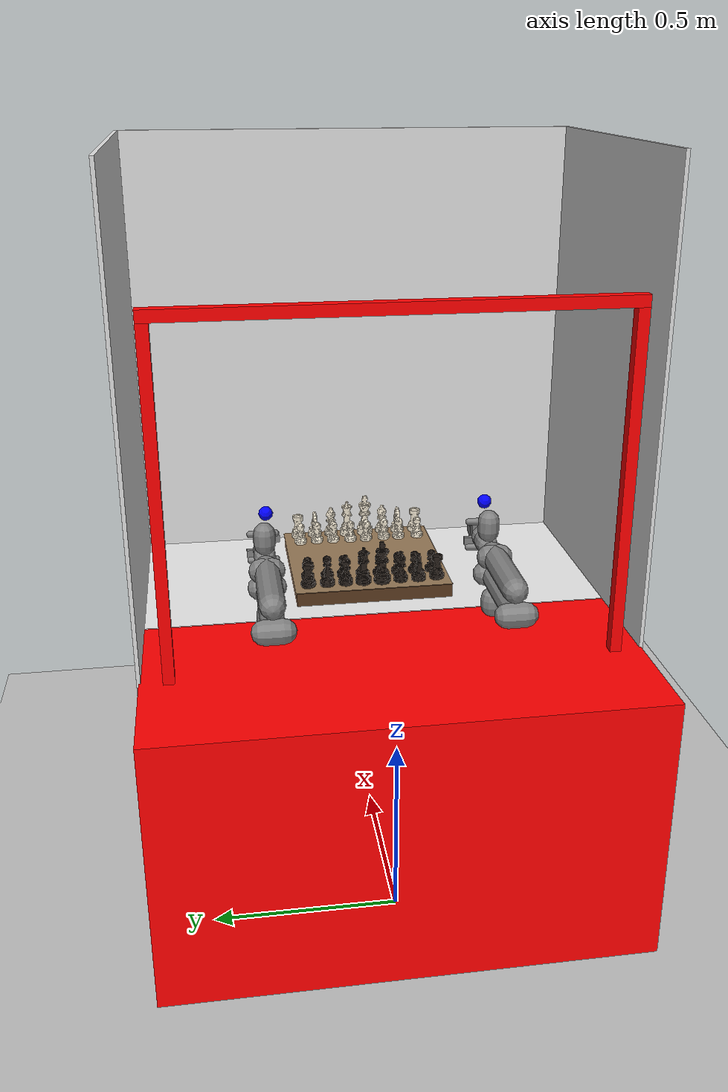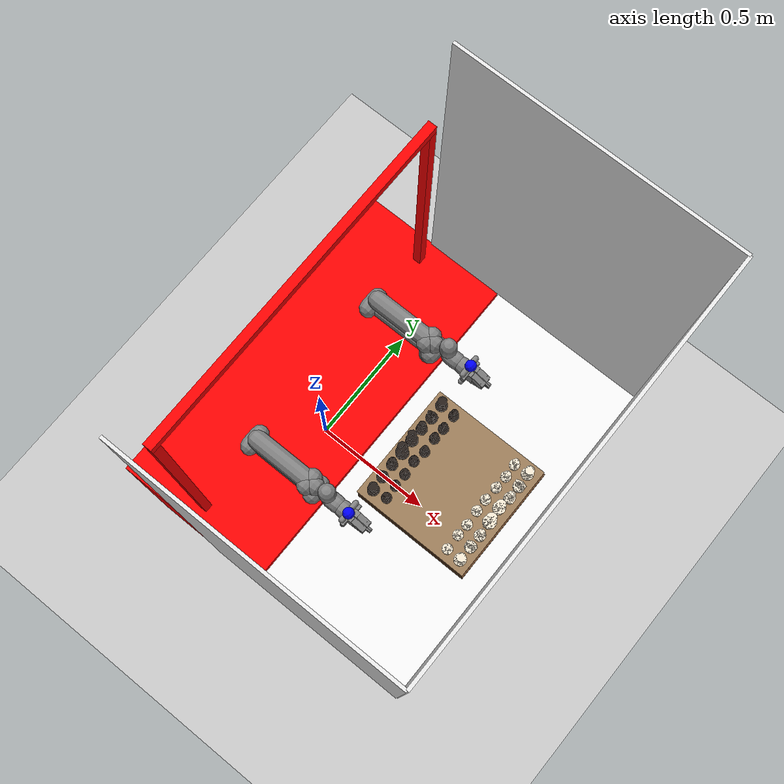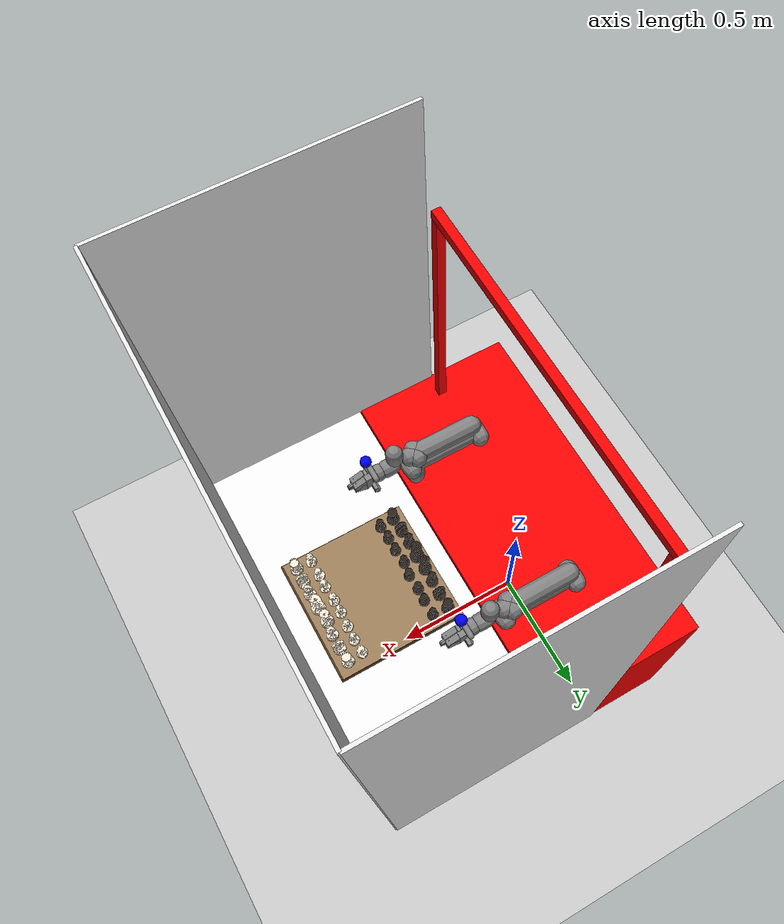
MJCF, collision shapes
<mujoco model="yam_chess">
  <compiler angle="radian" meshdir="assets" texturedir="assets"/>

  <option integrator="implicitfast"/>

  <visual>
    <global azimuth="120" elevation="-20" offwidth="1920" offheight="1080"/>
    <quality shadowsize="8192" offsamples="16"/>
    <headlight ambient="0.40 0.40 0.40" diffuse="0.0 0.0 0.0" specular="0 0 0"/>
    <rgba haze="1.0 1.0 1.0 1"/>
  </visual>

  <default>
    <default class="yam">
      <position inheritrange="1"/>
      <joint frictionloss="0.1" axis="0 0 1"/>
      <default class="dm4340">
        <joint armature="0.032"/>
        <position kp="40" kv="2.5" forcerange="-28 28"/>
      </default>
      <default class="dm4310">
        <joint armature="0.0018"/>
        <position kp="10" kv="1" forcerange="-10 10"/>
      </default>
      <default class="visual">
        <geom type="mesh" contype="0" conaffinity="0" density="0" group="2" material="black"/>
      </default>
      <default class="collision">
        <geom group="3" type="capsule" friction="2.0 0.1 0.01" condim="6"/>
        <default class="sphere_collision">
          <geom size="0.0006 0 0" type="sphere" rgba="1 0 0 1" friction="4.0 0.1 0.01" condim="6" solimp="0.998 0.998 0.001" solref="0.004 1" priority="2"/>
        </default>
      </default>
      <default class="finger">
        <joint type="slide" armature="0.1" frictionloss="0.1"/>
        <position ctrlrange="0.0 0.0495" kp="400" kv="14" inheritrange="0"/>
      </default>
    </default>
    <default class="chess_piece">
      <geom type="mesh" condim="6" friction="3.0 0.03 0.003" density="0" solref="0.004 1" solimp="0.998 0.998 0.001" priority="1"/>
    </default>
  </default>

  <asset>
    <material name="black" rgba="0.30 0.30 0.30 1"/>
    <material name="white" rgba="0.9 0.9 0.9 1"/>
    <material name="dark_piece" rgba="0.15 0.12 0.10 1" specular="0.6" shininess="0.8"/>
    <material name="light_piece" rgba="0.92 0.88 0.80 1" specular="0.6" shininess="0.8"/>
    <texture name="checker_board" type="2d" builtin="checker"
      rgb1="0.82 0.72 0.55" rgb2="0.35 0.22 0.12" width="512" height="512"/>
    <material name="board_mat" texture="checker_board" texrepeat="4 4" specular="0.3" shininess="0.5"/>
    <material name="board_side_mat" rgba="0.35 0.22 0.12 1" specular="0.3" shininess="0.5"/>

    <!-- Yam arm meshes -->
    <mesh file="i2rt_yam/assets/model2.stl"/>
    <mesh file="i2rt_yam/assets/model2__2.stl"/>
    <mesh file="i2rt_yam/assets/model2__3.stl"/>
    <mesh file="i2rt_yam/assets/model2__4.stl"/>
    <mesh file="i2rt_yam/assets/model2__5.stl"/>
    <mesh file="i2rt_yam/assets/model2__6.stl"/>
    <mesh file="i2rt_yam/assets/model2__7.stl"/>
    <mesh file="i2rt_yam/assets/model2__8.stl"/>
    <mesh file="i2rt_yam/assets/model2__9.stl"/>
    <mesh file="i2rt_yam/assets/model2__10.stl"/>
    <mesh file="i2rt_yam/assets/model2__11.stl"/>
    <mesh file="i2rt_yam/assets/model2__12.stl"/>
    <mesh file="i2rt_yam/assets/model2__13.stl"/>
    <mesh file="i2rt_yam/assets/model2__14.stl"/>
    <mesh file="i2rt_yam/assets/model2__15.stl"/>
    <mesh file="i2rt_yam/assets/model2__16.stl"/>
    <mesh file="i2rt_yam/assets/model2__17.stl"/>
    <mesh name="base_visual_gate" file="i2rt_yam/assets/base_visual_gate.stl"/>
    <mesh name="camera_d405" file="i2rt_yam/assets/d405.stl"/>

    <!-- Chess meshes -->
    <mesh name="black_bishop_1" file="chess/black_bishop_1.obj" scale="0.029 0.029 0.029"/>
    <mesh name="black_bishop_2" file="chess/black_bishop_2.obj" scale="0.029 0.029 0.029"/>
    <mesh name="black_king_1" file="chess/black_king_1.obj" scale="0.029 0.029 0.029"/>
    <mesh name="black_knight_1" file="chess/black_knight_1.obj" scale="0.029 0.029 0.029"/>
    <mesh name="black_knight_2" file="chess/black_knight_2.obj" scale="0.029 0.029 0.029"/>
    <mesh name="black_pawn_1" file="chess/black_pawn_1.obj" scale="0.029 0.029 0.029"/>
    <mesh name="black_pawn_2" file="chess/black_pawn_2.obj" scale="0.029 0.029 0.029"/>
    <mesh name="black_pawn_3" file="chess/black_pawn_3.obj" scale="0.029 0.029 0.029"/>
    <mesh name="black_pawn_4" file="chess/black_pawn_4.obj" scale="0.029 0.029 0.029"/>
    <mesh name="black_pawn_5" file="chess/black_pawn_5.obj" scale="0.029 0.029 0.029"/>
    <mesh name="black_pawn_6" file="chess/black_pawn_6.obj" scale="0.029 0.029 0.029"/>
    <mesh name="black_pawn_7" file="chess/black_pawn_7.obj" scale="0.029 0.029 0.029"/>
    <mesh name="black_pawn_8" file="chess/black_pawn_8.obj" scale="0.029 0.029 0.029"/>
    <mesh name="black_queen_1" file="chess/black_queen_1.obj" scale="0.029 0.029 0.029"/>
    <mesh name="black_rook_1" file="chess/black_rook_1.obj" scale="0.029 0.029 0.029"/>
    <mesh name="black_rook_2" file="chess/black_rook_2.obj" scale="0.029 0.029 0.029"/>
    <mesh name="board" file="chess/board.obj" scale="0.029 0.029 0.029"/>
    <mesh name="white_bishop_1" file="chess/white_bishop_1.obj" scale="0.029 0.029 0.029"/>
    <mesh name="white_bishop_2" file="chess/white_bishop_2.obj" scale="0.029 0.029 0.029"/>
    <mesh name="white_king_1" file="chess/white_king_1.obj" scale="0.029 0.029 0.029"/>
    <mesh name="white_knight_1" file="chess/white_knight_1.obj" scale="0.029 0.029 0.029"/>
    <mesh name="white_knight_2" file="chess/white_knight_2.obj" scale="0.029 0.029 0.029"/>
    <mesh name="white_pawn_1" file="chess/white_pawn_1.obj" scale="0.029 0.029 0.029"/>
    <mesh name="white_pawn_2" file="chess/white_pawn_2.obj" scale="0.029 0.029 0.029"/>
    <mesh name="white_pawn_3" file="chess/white_pawn_3.obj" scale="0.029 0.029 0.029"/>
    <mesh name="white_pawn_4" file="chess/white_pawn_4.obj" scale="0.029 0.029 0.029"/>
    <mesh name="white_pawn_5" file="chess/white_pawn_5.obj" scale="0.029 0.029 0.029"/>
    <mesh name="white_pawn_6" file="chess/white_pawn_6.obj" scale="0.029 0.029 0.029"/>
    <mesh name="white_pawn_7" file="chess/white_pawn_7.obj" scale="0.029 0.029 0.029"/>
    <mesh name="white_pawn_8" file="chess/white_pawn_8.obj" scale="0.029 0.029 0.029"/>
    <mesh name="white_queen_1" file="chess/white_queen_1.obj" scale="0.029 0.029 0.029"/>
    <mesh name="white_rook_1" file="chess/white_rook_1.obj" scale="0.029 0.029 0.029"/>
    <mesh name="white_rook_2" file="chess/white_rook_2.obj" scale="0.029 0.029 0.029"/>

    <!-- Environment -->
    <mesh name="flexible_base" file="flexible_gripper/base.stl"/>
    <mesh name="linear_module" file="flexible_gripper/linear_module.stl"/>
    <mesh name="soft_tips" file="flexible_gripper/soft_tips.stl"/>
    <texture type="skybox" builtin="gradient" rgb1="1.0 1.0 1.0" rgb2="0.98 0.98 0.98" width="512" height="3072"/>
    <texture type="2d" name="groundplane" builtin="checker" mark="edge"
      rgb1="0.55 0.55 0.55" rgb2="0.50 0.50 0.50" markrgb="0.6 0.6 0.6" width="300" height="300"/>
    <material name="groundplane" texture="groundplane" texuniform="true" texrepeat="5 5" reflectance="0.2"/>
  </asset>

  <worldbody>
    <!-- Lighting -->
    <light pos="0 0 1.5" dir="0 0 -1" directional="true"
      diffuse="0.30 0.30 0.30" specular="0.05 0.05 0.05"/>

    <!-- Floor -->
    <geom name="floor" size="0 0 0.05" type="plane" rgba="0.75 0.75 0.75 1"/>

    <!-- Gate/station structure (visual) -->
    <geom type="mesh" contype="0" conaffinity="0" group="2" density="0" rgba="0.60 0.62 0.68 1" mesh="base_visual_gate"/>
    <geom size="0.2975 0.65 0.375" pos="0 0 0.375" type="box" group="3" rgba="1 0 0 0.0"/>

    <!-- Gate collision bodies + top camera -->
    <body name="gate_collision" pos="0 0 0.75">
      <geom size="0.015 0.015 0.45" pos="0 0.575 0.45" type="box" group="3" rgba="1 0 0 0.0"/>
      <geom size="0.015 0.015 0.45" pos="0 -0.575 0.45" type="box" group="3" rgba="1 0 0 0.0"/>
      <geom size="0.015 0.015 0.59" pos="0 0 0.915" quat="0.707107 0.707107 0 0" type="box" group="3" rgba="1 0 0 0.0"/>
      <body name="top_bar_center" pos="0 0 0.915">
        <body name="top_camera_d405" pos="0.08600512 -0.009 0.03932053" quat="0.183012 0.683013 0.683013 0.183012">
          <geom type="mesh" contype="0" conaffinity="0" group="2" density="0.001" mass="0.001"
            rgba="0 0 0 0" mesh="camera_d405"/>
          <body name="top_camera_frame" pos="0.009 0 0" quat="0 0 0 1">
            <camera name="top" pos="0 0 0" quat="0 1 0 0" fovy="58"/>
          </body>
        </body>
      </body>
    </body>

    <!-- Enclosure walls -->
    <geom name="back_wall" type="box" size="0.005 0.65 1.0"
      pos="0.9 0 1.0" group="2" rgba="0.88 0.88 0.88 1"/>
    <geom name="left_wall" type="box" size="0.45 0.005 1.0"
      pos="0.45 0.65 1.0" group="2" rgba="0.88 0.88 0.88 1"/>
    <geom name="right_wall" type="box" size="0.45 0.005 1.0"
      pos="0.45 -0.65 1.0" group="2" rgba="0.88 0.88 0.88 1"/>

    <!-- Play table -->

    <!-- Side cameras on cage walls -->

    <!-- Overhead camera -->
    <body name="overhead_camera" pos="0.55 0.0 1.6">
      <camera name="overhead" pos="0 0 0" quat="0.707 0 0 -0.707" fovy="60"/>
    </body>

    <body name="left_side_camera" pos="0.5 0.55 1.05" euler="-1.3 0 3.14159">
      <camera name="left_side" pos="0 0 0" fovy="70"/>
    </body>
    <body name="right_side_camera" pos="0.5 -0.55 1.05" euler="1.3 0 0">
      <camera name="right_side" pos="0 0 0" fovy="70"/>
    </body>

    <body name="play_table">
      <geom size="0.2975 0.65 0.005" pos="0.6 0 0.745" type="box" group="2" contype="0" conaffinity="0" rgba="0.92 0.92 0.92 1"/>
    </body>
    <geom name="table_plane" type="plane" size="0.2975 0.65 0.01" pos="0.6 0 0.75" rgba="0 0 0 0" group="3"/>

    <!-- ==================== CHESSBOARD ==================== -->
    <body name="chessboard" pos="0.6 0.0 0.75" euler="1.5708 0 0">
      <geom name="board_geom" type="mesh" mesh="board" material="board_side_mat" mass="2.0"/>
    </body>
    <!-- Checkerboard surface overlay -->
    <geom name="board_checker" type="box" size="0.224 0.224 0.001"
      pos="0.594 0.002 0.793" material="board_mat"
      contype="0" conaffinity="0" group="2"/>

    <!-- ==================== CHESS PIECES ==================== -->
    <body name="black_bishop_1" pos="0.4059 0.0806 0.7969">
      <freejoint name="black_bishop_1_jnt"/>
      <geom name="black_bishop_1_geom" type="mesh" mesh="black_bishop_1" material="dark_piece" mass="0.003" class="chess_piece" euler="1.5708 0 0"/>
    </body>
    <body name="black_bishop_2" pos="0.4059 -0.0777 0.7969">
      <freejoint name="black_bishop_2_jnt"/>
      <geom name="black_bishop_2_geom" type="mesh" mesh="black_bishop_2" material="dark_piece" mass="0.003" class="chess_piece" euler="1.5708 0 0"/>
    </body>
    <body name="black_king_1" pos="0.4060 -0.0244 0.7969">
      <freejoint name="black_king_1_jnt"/>
      <geom name="black_king_1_geom" type="mesh" mesh="black_king_1" material="dark_piece" mass="0.006" class="chess_piece" euler="1.5708 0 0"/>
    </body>
    <body name="black_knight_1" pos="0.4073 -0.1301 0.7969">
      <freejoint name="black_knight_1_jnt"/>
      <geom name="black_knight_1_geom" type="mesh" mesh="black_knight_1" material="dark_piece" mass="0.003" class="chess_piece" euler="1.5708 0 0"/>
    </body>
    <body name="black_knight_2" pos="0.4081 0.1326 0.7969">
      <freejoint name="black_knight_2_jnt"/>
      <geom name="black_knight_2_geom" type="mesh" mesh="black_knight_2" material="dark_piece" mass="0.003" class="chess_piece" euler="1.5708 0 0"/>
    </body>
    <body name="black_pawn_1" pos="0.4597 -0.0774 0.7969">
      <freejoint name="black_pawn_1_jnt"/>
      <geom name="black_pawn_1_geom" type="mesh" mesh="black_pawn_1" material="dark_piece" mass="0.002" class="chess_piece" euler="1.5708 0 0"/>
    </body>
    <body name="black_pawn_2" pos="0.4624 -0.1778 0.7969">
      <freejoint name="black_pawn_2_jnt"/>
      <geom name="black_pawn_2_geom" type="mesh" mesh="black_pawn_2" material="dark_piece" mass="0.002" class="chess_piece" euler="1.5708 0 0"/>
    </body>
    <body name="black_pawn_3" pos="0.4597 -0.1274 0.7969">
      <freejoint name="black_pawn_3_jnt"/>
      <geom name="black_pawn_3_geom" type="mesh" mesh="black_pawn_3" material="dark_piece" mass="0.002" class="chess_piece" euler="1.5708 0 0"/>
    </body>
    <body name="black_pawn_4" pos="0.4554 -0.0234 0.7969">
      <freejoint name="black_pawn_4_jnt"/>
      <geom name="black_pawn_4_geom" type="mesh" mesh="black_pawn_4" material="dark_piece" mass="0.002" class="chess_piece" euler="1.5708 0 0"/>
    </body>
    <body name="black_pawn_5" pos="0.4629 0.0251 0.7969">
      <freejoint name="black_pawn_5_jnt"/>
      <geom name="black_pawn_5_geom" type="mesh" mesh="black_pawn_5" material="dark_piece" mass="0.002" class="chess_piece" euler="1.5708 0 0"/>
    </body>
    <body name="black_pawn_6" pos="0.4601 0.0814 0.7969">
      <freejoint name="black_pawn_6_jnt"/>
      <geom name="black_pawn_6_geom" type="mesh" mesh="black_pawn_6" material="dark_piece" mass="0.002" class="chess_piece" euler="1.5708 0 0"/>
    </body>
    <body name="black_pawn_7" pos="0.4624 0.1271 0.7969">
      <freejoint name="black_pawn_7_jnt"/>
      <geom name="black_pawn_7_geom" type="mesh" mesh="black_pawn_7" material="dark_piece" mass="0.002" class="chess_piece" euler="1.5708 0 0"/>
    </body>
    <body name="black_pawn_8" pos="0.4616 0.1840 0.7969">
      <freejoint name="black_pawn_8_jnt"/>
      <geom name="black_pawn_8_geom" type="mesh" mesh="black_pawn_8" material="dark_piece" mass="0.002" class="chess_piece" euler="1.5708 0 0"/>
    </body>
    <body name="black_queen_1" pos="0.4042 0.0295 0.7969">
      <freejoint name="black_queen_1_jnt"/>
      <geom name="black_queen_1_geom" type="mesh" mesh="black_queen_1" material="dark_piece" mass="0.005" class="chess_piece" euler="1.5708 0 0"/>
    </body>
    <body name="black_rook_1" pos="0.4068 0.1873 0.7969">
      <freejoint name="black_rook_1_jnt"/>
      <geom name="black_rook_1_geom" type="mesh" mesh="black_rook_1" material="dark_piece" mass="0.004" class="chess_piece" euler="1.5708 0 0"/>
    </body>
    <body name="black_rook_2" pos="0.4106 -0.1835 0.7969">
      <freejoint name="black_rook_2_jnt"/>
      <geom name="black_rook_2_geom" type="mesh" mesh="black_rook_2" material="dark_piece" mass="0.004" class="chess_piece" euler="1.5708 0 0"/>
    </body>
    <body name="white_bishop_1" pos="0.7807 0.0802 0.7969">
      <freejoint name="white_bishop_1_jnt"/>
      <geom name="white_bishop_1_geom" type="mesh" mesh="white_bishop_1" material="light_piece" mass="0.003" class="chess_piece" euler="1.5708 0 0"/>
    </body>
    <body name="white_bishop_2" pos="0.7814 -0.0810 0.7969">
      <freejoint name="white_bishop_2_jnt"/>
      <geom name="white_bishop_2_geom" type="mesh" mesh="white_bishop_2" material="light_piece" mass="0.003" class="chess_piece" euler="1.5708 0 0"/>
    </body>
    <body name="white_king_1" pos="0.7784 -0.0260 0.7969">
      <freejoint name="white_king_1_jnt"/>
      <geom name="white_king_1_geom" type="mesh" mesh="white_king_1" material="light_piece" mass="0.006" class="chess_piece" euler="1.5708 0 0"/>
    </body>
    <body name="white_knight_1" pos="0.7818 0.1311 0.7969">
      <freejoint name="white_knight_1_jnt"/>
      <geom name="white_knight_1_geom" type="mesh" mesh="white_knight_1" material="light_piece" mass="0.003" class="chess_piece" euler="1.5708 0 0"/>
    </body>
    <body name="white_knight_2" pos="0.7818 -0.1301 0.7969">
      <freejoint name="white_knight_2_jnt"/>
      <geom name="white_knight_2_geom" type="mesh" mesh="white_knight_2" material="light_piece" mass="0.003" class="chess_piece" euler="1.5708 0 0"/>
    </body>
    <body name="white_pawn_1" pos="0.7257 -0.1833 0.7969">
      <freejoint name="white_pawn_1_jnt"/>
      <geom name="white_pawn_1_geom" type="mesh" mesh="white_pawn_1" material="light_piece" mass="0.002" class="chess_piece" euler="1.5708 0 0"/>
    </body>
    <body name="white_pawn_2" pos="0.7242 -0.1247 0.7969">
      <freejoint name="white_pawn_2_jnt"/>
      <geom name="white_pawn_2_geom" type="mesh" mesh="white_pawn_2" material="light_piece" mass="0.002" class="chess_piece" euler="1.5708 0 0"/>
    </body>
    <body name="white_pawn_3" pos="0.7265 -0.0790 0.7969">
      <freejoint name="white_pawn_3_jnt"/>
      <geom name="white_pawn_3_geom" type="mesh" mesh="white_pawn_3" material="light_piece" mass="0.002" class="chess_piece" euler="1.5708 0 0"/>
    </body>
    <body name="white_pawn_4" pos="0.7222 -0.0225 0.7969">
      <freejoint name="white_pawn_4_jnt"/>
      <geom name="white_pawn_4_geom" type="mesh" mesh="white_pawn_4" material="light_piece" mass="0.002" class="chess_piece" euler="1.5708 0 0"/>
    </body>
    <body name="white_pawn_5" pos="0.7219 0.0258 0.7969">
      <freejoint name="white_pawn_5_jnt"/>
      <geom name="white_pawn_5_geom" type="mesh" mesh="white_pawn_5" material="light_piece" mass="0.002" class="chess_piece" euler="1.5708 0 0"/>
    </body>
    <body name="white_pawn_6" pos="0.7245 0.0797 0.7969">
      <freejoint name="white_pawn_6_jnt"/>
      <geom name="white_pawn_6_geom" type="mesh" mesh="white_pawn_6" material="light_piece" mass="0.002" class="chess_piece" euler="1.5708 0 0"/>
    </body>
    <body name="white_pawn_7" pos="0.7268 0.1299 0.7969">
      <freejoint name="white_pawn_7_jnt"/>
      <geom name="white_pawn_7_geom" type="mesh" mesh="white_pawn_7" material="light_piece" mass="0.002" class="chess_piece" euler="1.5708 0 0"/>
    </body>
    <body name="white_pawn_8" pos="0.7242 0.1803 0.7969">
      <freejoint name="white_pawn_8_jnt"/>
      <geom name="white_pawn_8_geom" type="mesh" mesh="white_pawn_8" material="light_piece" mass="0.002" class="chess_piece" euler="1.5708 0 0"/>
    </body>
    <body name="white_queen_1" pos="0.7740 0.0307 0.7969">
      <freejoint name="white_queen_1_jnt"/>
      <geom name="white_queen_1_geom" type="mesh" mesh="white_queen_1" material="light_piece" mass="0.005" class="chess_piece" euler="1.5708 0 0"/>
    </body>
    <body name="white_rook_1" pos="0.7770 0.1835 0.7969">
      <freejoint name="white_rook_1_jnt"/>
      <geom name="white_rook_1_geom" type="mesh" mesh="white_rook_1" material="light_piece" mass="0.004" class="chess_piece" euler="1.5708 0 0"/>
    </body>
    <body name="white_rook_2" pos="0.7798 -0.1848 0.7969">
      <freejoint name="white_rook_2_jnt"/>
      <geom name="white_rook_2_geom" type="mesh" mesh="white_rook_2" material="light_piece" mass="0.004" class="chess_piece" euler="1.5708 0 0"/>
    </body>

    <!-- ==================== LEFT ARM ==================== -->
    <body name="left_arm" pos="0.2525 0.31 0.76" childclass="yam">
      <geom class="visual" pos="0 0 -0.0006" quat="1 0 0 1" mesh="model2"/>
      <geom class="collision" size="0.033 0.01" pos="0.0 0.0 0.026" quat="1 0 0 0"/>
      <body name="left_link_1" pos="0 0 0.0631" quat="1 0 0 1">
        <inertial pos="-0.00192861 -0.00795735 0.0208176" quat="0.297851 0.642634 0.360045 0.607185" mass="0.12415"
          diaginertia="0.000180751 0.000145532 5.89179e-05"/>
        <joint name="left_joint1" range="-2.61799 3.05433" class="dm4340"/>
        <geom class="visual" pos="5.26159e-07 2.34355e-07 -0.0632" quat="1 0 0 0" mesh="model2__2"/>
        <body name="left_link_2" pos="2.5e-05 -0.02 0.0409" quat="1 1 1 1" gravcomp="1">
          <inertial pos="0.132008 2.10599e-06 0.000293073" quat="1 1 1 1" mass="1.24434"
            diaginertia="0.0121902 0.0121318 0.000683304"/>
          <joint name="left_joint2" range="0 3.66519" class="dm4340"/>
          <geom class="visual" pos="0.0199992 -0.1041 -2.44738e-05" quat="1 -1 -1 -1" mesh="model2__3"/>
          <geom class="visual" pos="0.0199992 -0.1041 -2.44738e-05" quat="1 -1 -1 -1" mesh="model2__4"/>
          <geom class="visual" pos="0.0199992 -0.1041 -2.44738e-05" quat="1 -1 -1 -1" mesh="model2__5" material="white"/>
          <geom class="collision" size="0.032 0.11" pos="0.13 0 0" quat="1 0 1 0"/>
          <geom class="collision" size="0.033 0.02" pos="0 0.0 0" quat="1 0 0 0"/>
          <geom class="collision" size="0.033 0.025" pos="0.265 0 0" quat="1 0 0 0"/>
          <body name="left_link_3" pos="0.264 0 0" quat="0 1 0 0" gravcomp="1">
            <inertial pos="-0.121816 -0.054846 -0.000111108" quat="1 1 1 1" mass="0.853698"
              diaginertia="0.00699732 0.00696112 0.000788244"/>
            <joint name="left_joint3" range="0 3.66519" class="dm4340"/>
            <geom class="visual" pos="-0.244001 0.104101 2.44738e-05" quat="1 1 1 -1" mesh="model2__6"/>
            <geom class="visual" pos="-0.244001 0.104101 2.44738e-05" quat="1 1 1 -1" mesh="model2__7"/>
            <geom class="visual" pos="-0.244001 0.104101 2.44738e-05" quat="1 1 1 -1" mesh="model2__8" material="white"/>
            <geom class="visual" pos="-0.244001 0.104101 2.44738e-05" quat="1 1 1 -1" mesh="model2__9"/>
            <geom class="collision" size="0.034 0.12" pos="-0.14 -0.06 0.0" quat="1 0 1 0"/>
            <geom class="collision" size="0.034 0.015" pos="-0.24 -0.06 0.0" quat="1 0 0 0"/>
            <body name="left_link_4" pos="-0.245 -0.06 0" quat="1 0 0 0" gravcomp="1">
              <inertial pos="-0.0769778 -0.0527104 0.000154878" quat="0.667 0.667 -0.236 -0.236" mass="0.463511"
                diaginertia="0.000791532 0.000744733 0.000282116"/>
              <joint name="left_joint4" range="-1.5708 1.5708" class="dm4310"/>
              <geom class="visual" pos="0.00100023 0.164101 2.44738e-05" quat="1 1 1 -1" mesh="model2__10"/>
              <geom class="collision" size="0.03 0.015" pos="-0.073 -0.06 0.0" quat="1 1 0 0"/>
              <body name="left_link_5" pos="-0.074 -0.0395 2.5e-05" quat="1 -1 1 1" gravcomp="1">
                <inertial pos="3.64861e-05 0.00025665 0.0353526" quat="1 0 0 0" mass="0.350962"
                  diaginertia="0.000197802 0.0001775 0.000147402"/>
                <joint name="left_joint5" range="-1.5708 1.5708" class="dm4310"/>
                <geom class="visual" pos="0 -0.0749971 0.203601" quat="1.32679e-06 1 0 0" mesh="model2__11"/>
                <geom class="collision" size="0.030 0.015" pos="0 0.025 0.0395" quat="1 1 0 0"/>
                <body name="left_link_6" pos="0 0.0353 0.0395" quat="1 -1 0 0" gravcomp="1">
                  <inertial pos="-0.000217767 7.37059e-05 0.0270545" quat="1 1 0 0" mass="0.367476"
                    diaginertia="0.000265958 0.000242686 0.000227409"/>
                  <joint name="left_joint6" range="-2.0944 2.0944" class="dm4310"/>
                  <geom class="visual" pos="0 -0.164101 -0.110597" quat="1 -1 0 0" mesh="model2__12"/>
                  <geom class="visual" pos="0 -0.164101 -0.110597" quat="1 -1 0 0" mesh="model2__13"/>
                  <geom class="collision" size="0.01 0.035" pos="0 0.039 0.052" quat="1 0 1 0"/>
                  <geom class="collision" size="0.030 0.005" pos="0 0.0 0.03" quat="1 0 0 1"/>
                  <geom class="collision" size="0.01 0.035" pos="0 -0.039 0.052" quat="1 0 1 0"/>
                  <site name="left_tcp_site" pos="0 0 0" quat="1 0 0 -1" size="0.005" rgba="1 0 0 1" group="4"/>
                  <site name="left_grasp_site" pos="0 0 0.1347" quat="1 0 0 -1" size="0.005" rgba="0 1 0 1" group="4"/>
                  <body name="left_camera_d405" pos="-0.0107 0.095 0.062" quat="0.906 0.423 0 0">
                    <geom type="mesh" contype="0" conaffinity="0" group="3" density="0.001" mass="0.001"
                      rgba="0 0 0 0" mesh="camera_d405"/>
                    <geom name="left_cam_col" type="sphere" size="0.02" pos="0 0 0"
                      group="3" rgba="0 0 1 0.0" mass="0.001"/>
                    <body name="left_camera_frame" pos="0.009 0 0" quat="0 0 0 1">
                      <camera name="left" pos="0 0 0" quat="0 1 0 0" fovy="58"/>
                    </body>
                  </body>
                  <body name="left_flex_gripper" pos="0 0 0" quat="0 0.7071 0.7071 0" gravcomp="1">
                    <inertial pos="0 0 0" mass="0.455645" diaginertia="0.0003 0.0003 0.0002"/>
                    <body name="left_linear_module" pos="-0.02615 0.04395 -0.0547" quat="0.707107 -0.707107 0 0" gravcomp="1">
                      <inertial pos="0.0206066 0.0299426 -0.0504181" quat="0.764844 0.232608 -0.418301 0.431197" mass="0.120713" diaginertia="9.73585e-05 9.07567e-05 4.0415e-05"/>
                      <joint name="left_left_finger" pos="0 0 0" axis="0 0 -1" type="slide" range="0 0.048" armature="0.1" frictionloss="0.1"/>
                      <geom pos="0.00406876 0.0123 -0.0209218" quat="0.499998 -0.5 -0.5 -0.500002" type="mesh" rgba="0.30 0.30 0.30 1" mesh="linear_module" contype="0" conaffinity="0" density="0" group="2"/>
                      <geom pos="0.006 0.00575867 -0.0451883" quat="0.499998 -0.5 -0.5 -0.500002" type="mesh" rgba="0.94902 0.843137 0.196078 1" mesh="soft_tips" contype="0" conaffinity="0" density="0" group="2"/>
                      <geom name="left_soft_tips_col_front" type="box" size="0.0035 0.005 0.03" pos="0.014 0.058 -0.047" quat="0.405578 -0.579228 -0.405579 -0.57923" group="3" rgba="0.5 0.5 0.5 1" density="0" friction="4.0 0.1 0.01" condim="6" solref="0.004 1" solimp="0.998 0.998 0.001" priority="2"/>
                      <geom name="left_soft_tips_col_front2" type="box" size="0.0035 0.005 0.03" pos="0.038 0.058 -0.047" quat="0.579226 -0.40558 -0.579228 -0.405582" group="3" rgba="0.5 0.5 0.5 1" density="0" friction="4.0 0.1 0.01" condim="6" solref="0.004 1" solimp="0.998 0.998 0.001" priority="2"/>
                      <geom name="left_soft_tips_col_front3" type="box" size="0.0035 0.0075 0.03" pos="0.026 0.058 -0.047" quat="0.499998 -0.5 -0.5 -0.500002" group="3" rgba="0.5 0.5 0.5 1" density="0" friction="4.0 0.1 0.01" condim="6" solref="0.004 1" solimp="0.998 0.998 0.001" priority="2"/>

                      <geom name="left_soft_tips_col_rear" type="box" size="0.0105 0.016 0.025" pos="0.02 0.04257959 -0.05556122" quat="0.405578 -0.579228 -0.405579 -0.57923" group="3" rgba="0.5 0.5 0.5 1" density="0" friction="3.0 0.1 0.01" condim="6" solref="0.004 1" solimp="0.998 0.998 0.001" priority="2"/>
                      <geom name="left_soft_tips_col_rear2" type="box" size="0.0105 0.016 0.025" pos="0.033 0.04257959 -0.05556122" quat="0.579226 -0.40558 -0.579228 -0.405582" group="3" rgba="0.5 0.5 0.5 1" density="0" friction="3.0 0.1 0.01" condim="6" solref="0.004 1" solimp="0.998 0.998 0.001" priority="2"/>

                      <geom name="left_linear_module_col_front" type="box" size="0.022 0.011 0.0065" pos="0.00499973 0.0049 -0.0199038" quat="0.499998 -0.5 -0.5 -0.500002" group="3" rgba="0.5 0.5 0.5 1" density="0" friction="3.0 0.1 0.01" condim="6" solref="0.004 1" solimp="0.998 0.998 0.001" priority="2"/>
                      <geom name="left_linear_module_col_rear_top" type="box" size="0.0105 0.028 0.0115" pos="0.023 0.017 -0.0555658" quat="0.499998 -0.5 -0.5 -0.500002" group="3" rgba="0.5 0.5 0.5 1" density="0" friction="3.0 0.1 0.01" condim="6" solref="0.004 1" solimp="0.998 0.998 0.001" priority="2"/>
                    </body>
                    <body name="left_linear_module_2" pos="0.02615 -0.04395 -0.0547" quat="0 0 0.707107 -0.707107" gravcomp="1">
                      <inertial pos="0.0206066 0.0299426 -0.0504181" quat="0.764844 0.232608 -0.418301 0.431197" mass="0.120713" diaginertia="9.73585e-05 9.07567e-05 4.0415e-05"/>
                      <joint name="left_right_finger" pos="0 0 0" axis="0 0 -1" type="slide" range="0 0.048" armature="0.1" frictionloss="0.1"/>
                      <geom pos="0.006 0.00575867 -0.0451883" quat="0.499998 -0.5 -0.5 -0.500002" type="mesh" rgba="0.94902 0.843137 0.196078 1" mesh="soft_tips" contype="0" conaffinity="0" density="0" group="2"/>
                      <geom pos="0.00406876 0.0123 -0.0209218" quat="0.499998 -0.5 -0.5 -0.500002" type="mesh" rgba="0.30 0.30 0.30 1" mesh="linear_module" contype="0" conaffinity="0" density="0" group="2"/>
                      <geom name="left_soft_tips_2_col_front" type="box" size="0.0035 0.005 0.03" pos="0.014 0.058 -0.047" quat="0.405578 -0.579228 -0.405579 -0.57923" group="3" rgba="0.5 0.5 0.5 1" density="0" friction="4.0 0.1 0.01" condim="6" solref="0.004 1" solimp="0.998 0.998 0.001" priority="2"/>
                      <geom name="left_soft_tips_2_col_front2" type="box" size="0.0035 0.005 0.03" pos="0.038 0.058 -0.047" quat="0.579226 -0.40558 -0.579228 -0.405582" group="3" rgba="0.5 0.5 0.5 1" density="0" friction="4.0 0.1 0.01" condim="6" solref="0.004 1" solimp="0.998 0.998 0.001" priority="2"/>
                      <geom name="left_soft_tips_2_col_front3" type="box" size="0.0035 0.0075 0.03" pos="0.026 0.058 -0.047" quat="0.499998 -0.5 -0.5 -0.500002" group="3" rgba="0.5 0.5 0.5 1" density="0" friction="4.0 0.1 0.01" condim="6" solref="0.004 1" solimp="0.998 0.998 0.001" priority="2"/>

                      <geom name="left_soft_tips_2_col_rear" type="box" size="0.0105 0.016 0.025" pos="0.02 0.04257959 -0.05556122" quat="0.405578 -0.579228 -0.405579 -0.57923" group="3" rgba="0.5 0.5 0.5 1" density="0" friction="3.0 0.1 0.01" condim="6" solref="0.004 1" solimp="0.998 0.998 0.001" priority="2"/>
                      <geom name="left_soft_tips_2_col_rear2" type="box" size="0.0105 0.016 0.025" pos="0.033 0.04257959 -0.05556122" quat="0.579226 -0.40558 -0.579228 -0.405582" group="3" rgba="0.5 0.5 0.5 1" density="0" friction="3.0 0.1 0.01" condim="6" solref="0.004 1" solimp="0.998 0.998 0.001" priority="2"/>

                      <geom name="left_linear_module_2_col_front" type="box" size="0.022 0.011 0.0065" pos="0.00499973 0.0049 -0.0199038" quat="0.499998 -0.5 -0.5 -0.500002" group="3" rgba="0.5 0.5 0.5 1" density="0" friction="3.0 0.1 0.01" condim="6" solref="0.004 1" solimp="0.998 0.998 0.001" priority="2"/>
                      <geom name="left_linear_module_2_col_rear_top" type="box" size="0.0105 0.028 0.0115" pos="0.023 0.017 -0.0555658" quat="0.499998 -0.5 -0.5 -0.500002" group="3" rgba="0.5 0.5 0.5 1" density="0" friction="3.0 0.1 0.01" condim="6" solref="0.004 1" solimp="0.998 0.998 0.001" priority="2"/>
                    </body>
                  </body>
                </body>
              </body>
            </body>
          </body>
        </body>
      </body>
    </body>

    <!-- ==================== RIGHT ARM ==================== -->
    <body name="right_arm" pos="0.2525 -0.31 0.76" childclass="yam">
      <geom class="visual" pos="0 0 -0.0006" quat="1 0 0 1" mesh="model2"/>
      <geom class="collision" size="0.033 0.01" pos="0.0 0.0 0.026" quat="1 0 0 0"/>
      <body name="right_link_1" pos="0 0 0.0631" quat="1 0 0 1">
        <inertial pos="-0.00192861 -0.00795735 0.0208176" quat="0.297851 0.642634 0.360045 0.607185" mass="0.12415"
          diaginertia="0.000180751 0.000145532 5.89179e-05"/>
        <joint name="right_joint1" range="-2.61799 3.05433" class="dm4340"/>
        <geom class="visual" pos="5.26159e-07 2.34355e-07 -0.0632" quat="1 0 0 0" mesh="model2__2"/>
        <body name="right_link_2" pos="2.5e-05 -0.02 0.0409" quat="1 1 1 1" gravcomp="1">
          <inertial pos="0.132008 2.10599e-06 0.000293073" quat="1 1 1 1" mass="1.24434"
            diaginertia="0.0121902 0.0121318 0.000683304"/>
          <joint name="right_joint2" range="0 3.66519" class="dm4340"/>
          <geom class="visual" pos="0.0199992 -0.1041 -2.44738e-05" quat="1 -1 -1 -1" mesh="model2__3"/>
          <geom class="visual" pos="0.0199992 -0.1041 -2.44738e-05" quat="1 -1 -1 -1" mesh="model2__4"/>
          <geom class="visual" pos="0.0199992 -0.1041 -2.44738e-05" quat="1 -1 -1 -1" mesh="model2__5" material="white"/>
          <geom class="collision" size="0.032 0.11" pos="0.13 0 0" quat="1 0 1 0"/>
          <geom class="collision" size="0.033 0.02" pos="0 0.0 0" quat="1 0 0 0"/>
          <geom class="collision" size="0.033 0.025" pos="0.265 0 0" quat="1 0 0 0"/>
          <body name="right_link_3" pos="0.264 0 0" quat="0 1 0 0" gravcomp="1">
            <inertial pos="-0.121816 -0.054846 -0.000111108" quat="1 1 1 1" mass="0.853698"
              diaginertia="0.00699732 0.00696112 0.000788244"/>
            <joint name="right_joint3" range="0 3.66519" class="dm4340"/>
            <geom class="visual" pos="-0.244001 0.104101 2.44738e-05" quat="1 1 1 -1" mesh="model2__6"/>
            <geom class="visual" pos="-0.244001 0.104101 2.44738e-05" quat="1 1 1 -1" mesh="model2__7"/>
            <geom class="visual" pos="-0.244001 0.104101 2.44738e-05" quat="1 1 1 -1" mesh="model2__8" material="white"/>
            <geom class="visual" pos="-0.244001 0.104101 2.44738e-05" quat="1 1 1 -1" mesh="model2__9"/>
            <geom class="collision" size="0.034 0.12" pos="-0.14 -0.06 0.0" quat="1 0 1 0"/>
            <geom class="collision" size="0.034 0.015" pos="-0.24 -0.06 0.0" quat="1 0 0 0"/>
            <body name="right_link_4" pos="-0.245 -0.06 0" quat="1 0 0 0" gravcomp="1">
              <inertial pos="-0.0769778 -0.0527104 0.000154878" quat="0.667 0.667 -0.236 -0.236" mass="0.463511"
                diaginertia="0.000791532 0.000744733 0.000282116"/>
              <joint name="right_joint4" range="-1.5708 1.5708" class="dm4310"/>
              <geom class="visual" pos="0.00100023 0.164101 2.44738e-05" quat="1 1 1 -1" mesh="model2__10"/>
              <geom class="collision" size="0.03 0.015" pos="-0.073 -0.06 0.0" quat="1 1 0 0"/>
              <body name="right_link_5" pos="-0.074 -0.0395 2.5e-05" quat="1 -1 1 1" gravcomp="1">
                <inertial pos="3.64861e-05 0.00025665 0.0353526" quat="1 0 0 0" mass="0.350962"
                  diaginertia="0.000197802 0.0001775 0.000147402"/>
                <joint name="right_joint5" range="-1.5708 1.5708" class="dm4310"/>
                <geom class="visual" pos="0 -0.0749971 0.203601" quat="1.32679e-06 1 0 0" mesh="model2__11"/>
                <geom class="collision" size="0.030 0.015" pos="0 0.025 0.0395" quat="1 1 0 0"/>
                <body name="right_link_6" pos="0 0.0353 0.0395" quat="1 -1 0 0" gravcomp="1">
                  <inertial pos="-0.000217767 7.37059e-05 0.0270545" quat="1 1 0 0" mass="0.367476"
                    diaginertia="0.000265958 0.000242686 0.000227409"/>
                  <joint name="right_joint6" range="-2.0944 2.0944" class="dm4310"/>
                  <geom class="visual" pos="0 -0.164101 -0.110597" quat="1 -1 0 0" mesh="model2__12"/>
                  <geom class="visual" pos="0 -0.164101 -0.110597" quat="1 -1 0 0" mesh="model2__13"/>
                  <geom class="collision" size="0.01 0.035" pos="0 0.039 0.052" quat="1 0 1 0"/>
                  <geom class="collision" size="0.030 0.005" pos="0 0.0 0.03" quat="1 0 0 1"/>
                  <geom class="collision" size="0.01 0.035" pos="0 -0.039 0.052" quat="1 0 1 0"/>
                  <site name="right_tcp_site" pos="0 0 0" quat="1 0 0 -1" size="0.005" rgba="1 0 0 1" group="4"/>
                  <site name="right_grasp_site" pos="0 0 0.1347" quat="1 0 0 -1" size="0.005" rgba="0 1 0 1" group="4"/>
                  <body name="right_camera_d405" pos="-0.0107 0.095 0.062" quat="0.906 0.423 0 0">
                    <geom type="mesh" contype="0" conaffinity="0" group="3" density="0.001" mass="0.001"
                      rgba="0 0 0 0" mesh="camera_d405"/>
                    <geom name="right_cam_col" type="sphere" size="0.02" pos="0 0 0"
                      group="3" rgba="0 0 1 0.0" mass="0.001"/>
                    <body name="right_camera_frame" pos="0.009 0 0" quat="0 0 0 1">
                      <camera name="right" pos="0 0 0" quat="0 1 0 0" fovy="58"/>
                    </body>
                  </body>
                  <body name="right_flex_gripper" pos="0 0 0" quat="0 0.7071 0.7071 0" gravcomp="1">
                    <inertial pos="0 0 0" mass="0.455645" diaginertia="0.0003 0.0003 0.0002"/>
                    <body name="right_linear_module" pos="-0.02615 0.04395 -0.0547" quat="0.707107 -0.707107 0 0" gravcomp="1">
                      <inertial pos="0.0206066 0.0299426 -0.0504181" quat="0.764844 0.232608 -0.418301 0.431197" mass="0.120713" diaginertia="9.73585e-05 9.07567e-05 4.0415e-05"/>
                      <joint name="right_left_finger" pos="0 0 0" axis="0 0 -1" type="slide" range="0 0.048" armature="0.1" frictionloss="0.1"/>
                      <geom pos="0.006 0.00575867 -0.0451883" quat="0.499998 -0.5 -0.5 -0.500002" type="mesh" rgba="0.94902 0.843137 0.196078 1" mesh="soft_tips" contype="0" conaffinity="0" density="0" group="2"/>
                      <geom pos="0.00406876 0.0123 -0.0209218" quat="0.499998 -0.5 -0.5 -0.500002" type="mesh" rgba="0.30 0.30 0.30 1" mesh="linear_module" contype="0" conaffinity="0" density="0" group="2"/>
                      <geom name="right_soft_tips_col_front" type="box" size="0.0035 0.005 0.03" pos="0.014 0.058 -0.047" quat="0.405578 -0.579228 -0.405579 -0.57923" group="3" rgba="0.5 0.5 0.5 1" density="0" friction="4.0 0.1 0.01" condim="6" solref="0.004 1" solimp="0.998 0.998 0.001" priority="2"/>
                      <geom name="right_soft_tips_col_front2" type="box" size="0.0035 0.005 0.03" pos="0.038 0.058 -0.047" quat="0.579226 -0.40558 -0.579228 -0.405582" group="3" rgba="0.5 0.5 0.5 1" density="0" friction="4.0 0.1 0.01" condim="6" solref="0.004 1" solimp="0.998 0.998 0.001" priority="2"/>
                      <geom name="right_soft_tips_col_front3" type="box" size="0.0035 0.0075 0.03" pos="0.026 0.058 -0.047" quat="0.499998 -0.5 -0.5 -0.500002" group="3" rgba="0.5 0.5 0.5 1" density="0" friction="4.0 0.1 0.01" condim="6" solref="0.004 1" solimp="0.998 0.998 0.001" priority="2"/>

                      <geom name="right_soft_tips_col_rear" type="box" size="0.0105 0.016 0.025" pos="0.02 0.04257959 -0.05556122" quat="0.405578 -0.579228 -0.405579 -0.57923" group="3" rgba="0.5 0.5 0.5 1" density="0" friction="3.0 0.1 0.01" condim="6" solref="0.004 1" solimp="0.998 0.998 0.001" priority="2"/>
                      <geom name="right_soft_tips_col_rear2" type="box" size="0.0105 0.016 0.025" pos="0.033 0.04257959 -0.05556122" quat="0.579226 -0.40558 -0.579228 -0.405582" group="3" rgba="0.5 0.5 0.5 1" density="0" friction="3.0 0.1 0.01" condim="6" solref="0.004 1" solimp="0.998 0.998 0.001" priority="2"/>

                      <geom name="right_linear_module_col_front" type="box" size="0.022 0.011 0.0065" pos="0.00499973 0.0049 -0.0199038" quat="0.499998 -0.5 -0.5 -0.500002" group="3" rgba="0.5 0.5 0.5 1" density="0" friction="3.0 0.1 0.01" condim="6" solref="0.004 1" solimp="0.998 0.998 0.001" priority="2"/>
                      <geom name="right_linear_module_col_rear_top" type="box" size="0.0105 0.028 0.0115" pos="0.023 0.017 -0.0555658" quat="0.499998 -0.5 -0.5 -0.500002" group="3" rgba="0.5 0.5 0.5 1" density="0" friction="3.0 0.1 0.01" condim="6" solref="0.004 1" solimp="0.998 0.998 0.001" priority="2"/>
                    </body>
                    <body name="right_linear_module_2" pos="0.02615 -0.04395 -0.0547" quat="0 0 0.707107 -0.707107" gravcomp="1">
                      <inertial pos="0.0206066 0.0299426 -0.0504181" quat="0.764844 0.232608 -0.418301 0.431197" mass="0.120713" diaginertia="9.73585e-05 9.07567e-05 4.0415e-05"/>
                      <joint name="right_right_finger" pos="0 0 0" axis="0 0 -1" type="slide" range="0 0.048" armature="0.1" frictionloss="0.1"/>
                      <geom pos="0.006 0.00575867 -0.0451883" quat="0.499998 -0.5 -0.5 -0.500002" type="mesh" rgba="0.94902 0.843137 0.196078 1" mesh="soft_tips" contype="0" conaffinity="0" density="0" group="2"/>
                      <geom pos="0.00406876 0.0123 -0.0209218" quat="0.499998 -0.5 -0.5 -0.500002" type="mesh" rgba="0.30 0.30 0.30 1" mesh="linear_module" contype="0" conaffinity="0" density="0" group="2"/>
                      <geom name="right_soft_tips_2_col_front" type="box" size="0.0035 0.005 0.03" pos="0.014 0.058 -0.047" quat="0.405578 -0.579228 -0.405579 -0.57923" group="3" rgba="0.5 0.5 0.5 1" density="0" friction="4.0 0.1 0.01" condim="6" solref="0.004 1" solimp="0.998 0.998 0.001" priority="2"/>
                      <geom name="right_soft_tips_2_col_front2" type="box" size="0.0035 0.005 0.03" pos="0.038 0.058 -0.047" quat="0.579226 -0.40558 -0.579228 -0.405582" group="3" rgba="0.5 0.5 0.5 1" density="0" friction="4.0 0.1 0.01" condim="6" solref="0.004 1" solimp="0.998 0.998 0.001" priority="2"/>
                      <geom name="right_soft_tips_2_col_front3" type="box" size="0.0035 0.0075 0.03" pos="0.026 0.058 -0.047" quat="0.499998 -0.5 -0.5 -0.500002" group="3" rgba="0.5 0.5 0.5 1" density="0" friction="4.0 0.1 0.01" condim="6" solref="0.004 1" solimp="0.998 0.998 0.001" priority="2"/>

                      <geom name="right_soft_tips_2_col_rear" type="box" size="0.0105 0.016 0.025" pos="0.02 0.04257959 -0.05556122" quat="0.405578 -0.579228 -0.405579 -0.57923"  group="3" rgba="0.5 0.5 0.5 1" density="0" friction="3.0 0.1 0.01" condim="6" solref="0.004 1" solimp="0.998 0.998 0.001" priority="2"/>
                      <geom name="right_soft_tips_2_col_rear2" type="box" size="0.0105 0.016 0.025" pos="0.033 0.04257959 -0.05556122" quat="0.579226 -0.40558 -0.579228 -0.405582"  group="3" rgba="0.5 0.5 0.5 1" density="0" friction="3.0 0.1 0.01" condim="6" solref="0.004 1" solimp="0.998 0.998 0.001" priority="2"/>

                      <geom name="right_linear_module_2_col_front" type="box" size="0.022 0.011 0.0065" pos="0.00499973 0.0049 -0.0199038" quat="0.499998 -0.5 -0.5 -0.500002" group="3" rgba="0.5 0.5 0.5 1" density="0" friction="3.0 0.1 0.01" condim="6" solref="0.004 1" solimp="0.998 0.998 0.001" priority="2"/>
                      <geom name="right_linear_module_2_col_rear_top" type="box" size="0.0105 0.028 0.0115" pos="0.023 0.017 -0.0555658" quat="0.499998 -0.5 -0.5 -0.500002" group="3" rgba="0.5 0.5 0.5 1" density="0" friction="3.0 0.1 0.01" condim="6" solref="0.004 1" solimp="0.998 0.998 0.001" priority="2"/>

                    </body>
                  </body>
                </body>
              </body>
            </body>
          </body>
        </body>
      </body>
    </body>
  </worldbody>

  <!-- Equality constraints: mirror left/right finger per arm -->
  <equality>
    <joint joint1="left_left_finger" joint2="left_right_finger" polycoef="0 1 0 0 0"/>
    <joint joint1="right_left_finger" joint2="right_right_finger" polycoef="0 1 0 0 0"/>
  </equality>

  <!-- Actuators: 14 total (7 per arm) -->
  <actuator>
    <position name="left_joint1" joint="left_joint1" class="dm4340"/>
    <position name="left_joint2" joint="left_joint2" class="dm4340"/>
    <position name="left_joint3" joint="left_joint3" class="dm4340"/>
    <position name="left_joint4" joint="left_joint4" class="dm4310" kp="20" kv=".5"/>
    <position name="left_joint5" joint="left_joint5" class="dm4310"/>
    <position name="left_joint6" joint="left_joint6" class="dm4310"/>
    <position name="left_gripper" joint="left_left_finger" ctrlrange="0.0 0.048" kp="400" kv="14"/>
    <position name="right_joint1" joint="right_joint1" class="dm4340"/>
    <position name="right_joint2" joint="right_joint2" class="dm4340"/>
    <position name="right_joint3" joint="right_joint3" class="dm4340"/>
    <position name="right_joint4" joint="right_joint4" class="dm4310" kp="20" kv=".5"/>
    <position name="right_joint5" joint="right_joint5" class="dm4310"/>
    <position name="right_joint6" joint="right_joint6" class="dm4310"/>
    <position name="right_gripper" joint="right_left_finger" ctrlrange="0.0 0.048" kp="400" kv="14"/>
  </actuator>

  <!-- Home keyframe -->
  <!-- qpos: 32 piece freejoints (7 each) + 16 arm joints -->
  <keyframe>
    <key name="home"
      qpos="0.4059 0.0806 0.7969 1 0 0 0 0.4059 -0.0777 0.7969 1 0 0 0 0.4060 -0.0244 0.7969 1 0 0 0 0.4073 -0.1301 0.7969 1 0 0 0 0.4081 0.1326 0.7969 1 0 0 0 0.4597 -0.0774 0.7969 1 0 0 0 0.4624 -0.1778 0.7969 1 0 0 0 0.4597 -0.1274 0.7969 1 0 0 0 0.4554 -0.0234 0.7969 1 0 0 0 0.4629 0.0251 0.7969 1 0 0 0 0.4601 0.0814 0.7969 1 0 0 0 0.4624 0.1271 0.7969 1 0 0 0 0.4616 0.1840 0.7969 1 0 0 0 0.4042 0.0295 0.7969 1 0 0 0 0.4068 0.1873 0.7969 1 0 0 0 0.4106 -0.1835 0.7969 1 0 0 0 0.7807 0.0802 0.7969 1 0 0 0 0.7814 -0.0810 0.7969 1 0 0 0 0.7784 -0.0260 0.7969 1 0 0 0 0.7818 0.1311 0.7969 1 0 0 0 0.7818 -0.1301 0.7969 1 0 0 0 0.7257 -0.1833 0.7969 1 0 0 0 0.7242 -0.1247 0.7969 1 0 0 0 0.7265 -0.0790 0.7969 1 0 0 0 0.7222 -0.0225 0.7969 1 0 0 0 0.7219 0.0258 0.7969 1 0 0 0 0.7245 0.0797 0.7969 1 0 0 0 0.7268 0.1299 0.7969 1 0 0 0 0.7242 0.1803 0.7969 1 0 0 0 0.7740 0.0307 0.7969 1 0 0 0 0.7770 0.1835 0.7969 1 0 0 0 0.7798 -0.1848 0.7969 1 0 0 0
            0 1.047 1.047 0 0 0 0 0  0 1.047 1.047 0 0 0 0 0"
      ctrl="0 1.047 1.047 0 0 0 0  0 1.047 1.047 0 0 0 0"/>
  </keyframe>
  <contact>
    <exclude body1="left_flex_gripper" body2="left_linear_module"/>
    <exclude body1="left_flex_gripper" body2="left_linear_module_2"/>
    <exclude body1="left_linear_module" body2="left_linear_module_2"/>
    <exclude body1="right_flex_gripper" body2="right_linear_module"/>
    <exclude body1="right_flex_gripper" body2="right_linear_module_2"/>
    <exclude body1="right_linear_module" body2="right_linear_module_2"/>
      <exclude body1="left_flex_gripper" body2="left_linear_module"/>
    <exclude body1="left_flex_gripper" body2="left_linear_module_2"/>
    <exclude body1="left_linear_module" body2="left_linear_module_2"/>
    <exclude body1="right_flex_gripper" body2="right_linear_module"/>
    <exclude body1="right_flex_gripper" body2="right_linear_module_2"/>
    <exclude body1="right_linear_module" body2="right_linear_module_2"/>
  </contact>
</mujoco>
